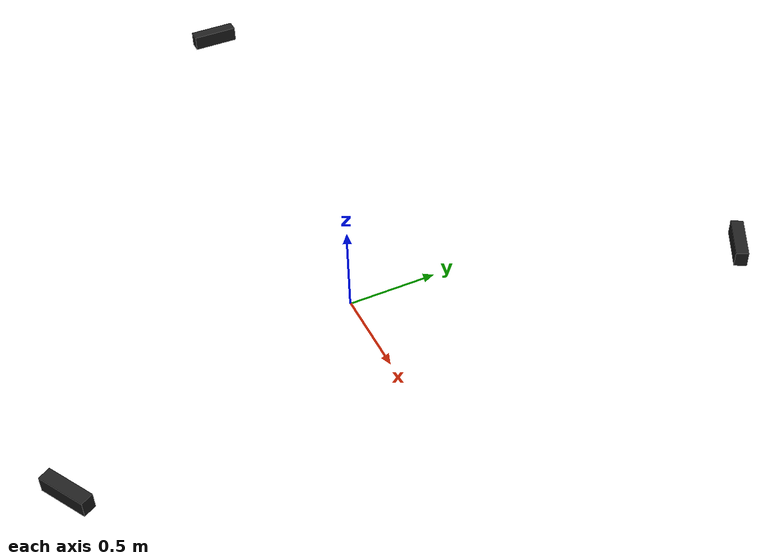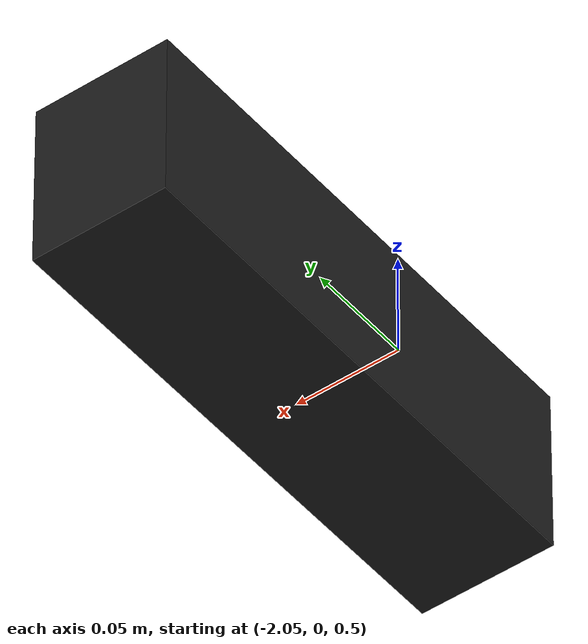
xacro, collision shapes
<?xml version="1.0"?>
<robot name="kinect2" xmlns:xacro="http://ros.org/wiki/xacro">
  <!-- File Include -->
  <xacro:include filename="$(find two_kinect_description)/urdf/common.xacro" />
  <xacro:include filename="$(find two_kinect_description)/urdf/materials.xacro"/>
  <xacro:include filename="$(find two_kinect_description)/urdf/sensor/kinect.urdf.xacro"/>
  <xacro:include filename="$(find two_kinect_description)/urdf/sensor/kinect.gazebo.xacro"/>

  <!-- add Kinect V2 -->
  <!-- Link -->
  <link name="world"/>
  <link name="virtual_kinect2_link"/>

  <joint name="virtual_kinect_joint" type="fixed">
    <origin rpy="0 0 0" xyz="-1 0 0.5"/>
    <parent link="world"/>
    <child link="virtual_kinect2_link"/>
  </joint>
  <xacro:kinect_joints suffix="/kinect_first" rpy="0 0 -${120*M_PI/180}" xyz="1 1.7320 0.5"/>
  <xacro:kinect_joints suffix="/kinect_second" rpy="0 0 ${120*M_PI/180}" xyz="1 -1.7320 0.5"/>
  <xacro:kinect_joints suffix="/kinect_third" rpy="0 0 0" xyz="-2 0 0.5"/>
</robot>

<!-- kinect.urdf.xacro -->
<robot xmlns:xacro="http://ros.org/wiki/xacro">

  <xacro:macro name="kinect2_link_box_v0" params="name">
    <link name="${name}">
      <visual>
        <material name="black"/>
        <geometry>
          <mesh filename="package://two_kinect_description/meshes/sensor/visual/COLLADA/kinectv2.stl"/>
        </geometry>
      </visual>
      <collision>
        <origin xyz="0 0 0.041"/>
        <geometry>
          <box size="0.065 0.25 0.082"/>
        </geometry>
      </collision>
      <inertial>
        <mass value="0.935"/>
        <inertia ixx="0.0053937" ixy="0" ixz="0"
                 iyy="0.00085311" iyz="0"
                 izz="0.00519899" />
      </inertial>
    </link>
  </xacro:macro>

  <xacro:macro name="kinect_joints" params="suffix rpy xyz">

    <xacro:kinect2_link_box_v0 name="${suffix}/kinect2_link"/>
    <link name="${suffix}/kinect2_rgb_optical_frame"/>

    <!-- Joint -->
    <joint name="${suffix}/joint_kinect2" type="fixed">
      <origin rpy="${rpy}" xyz="${xyz}"/>
      <parent link="world"/>
      <child link="${suffix}/kinect2_link"/>
    </joint>

    <joint name="${suffix}/joint_rgb_kinect2" type="fixed">
      <origin rpy="${M_PI/2} ${M_PI} ${M_PI/2}"/>
      <parent link="${suffix}/kinect2_link"/>
      <child link="${suffix}/kinect2_rgb_optical_frame"/>
    </joint>

    <!-- Gazebo -->
    <xacro:kinect_gazebo name="${suffix}/kinect2" suffix="${suffix}"/>
  </xacro:macro>

</robot>
